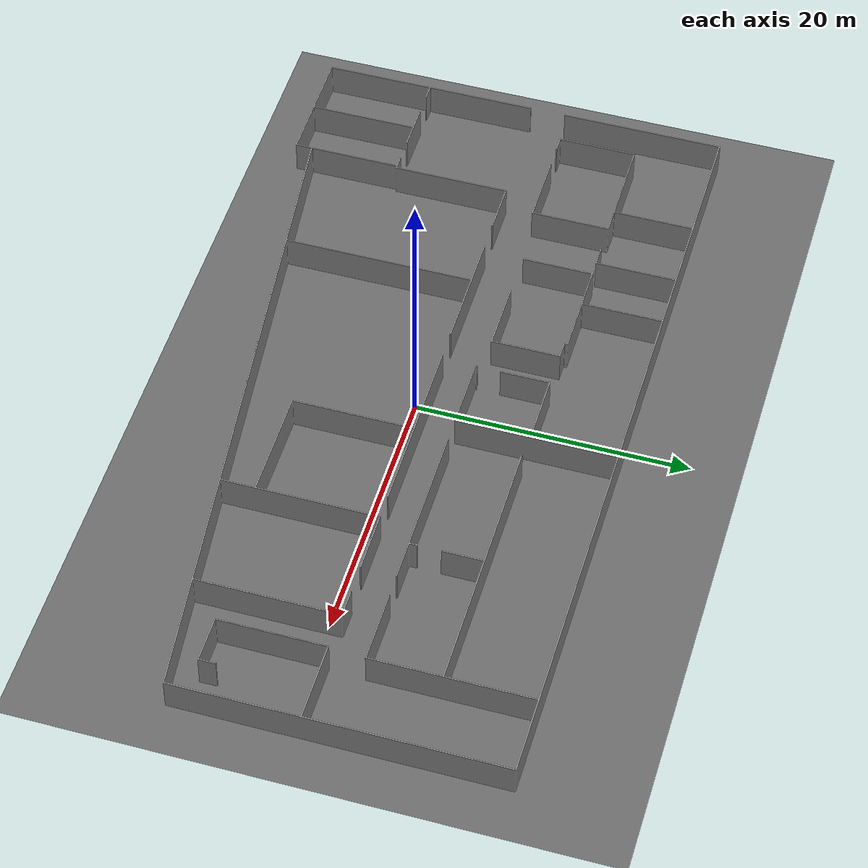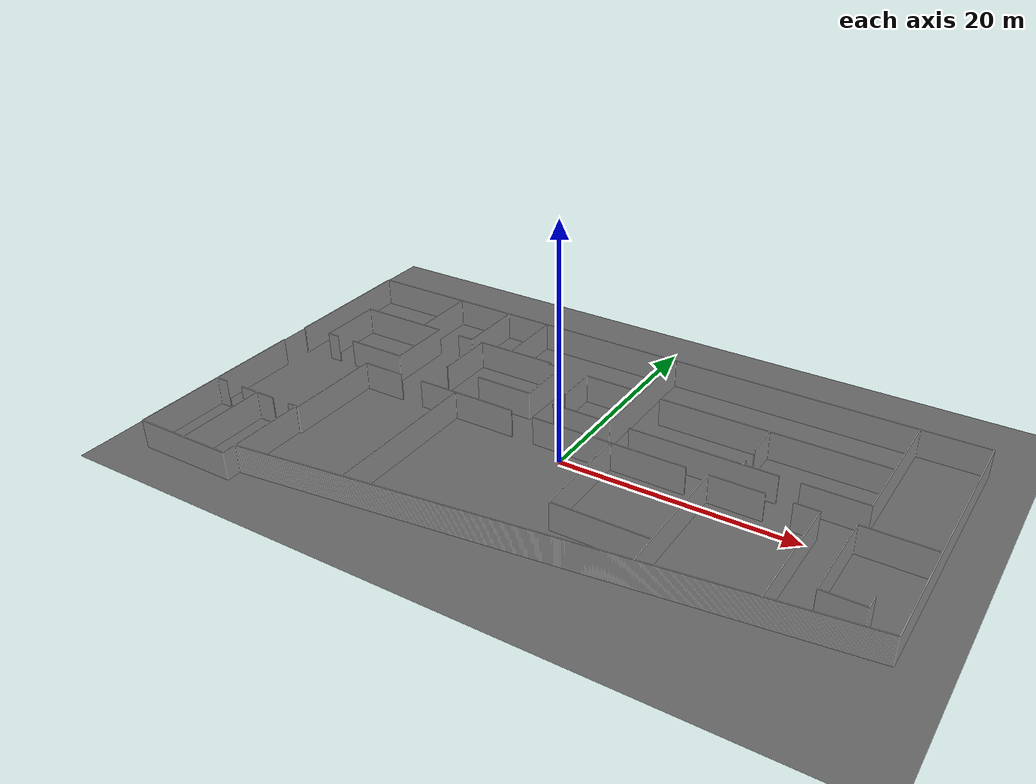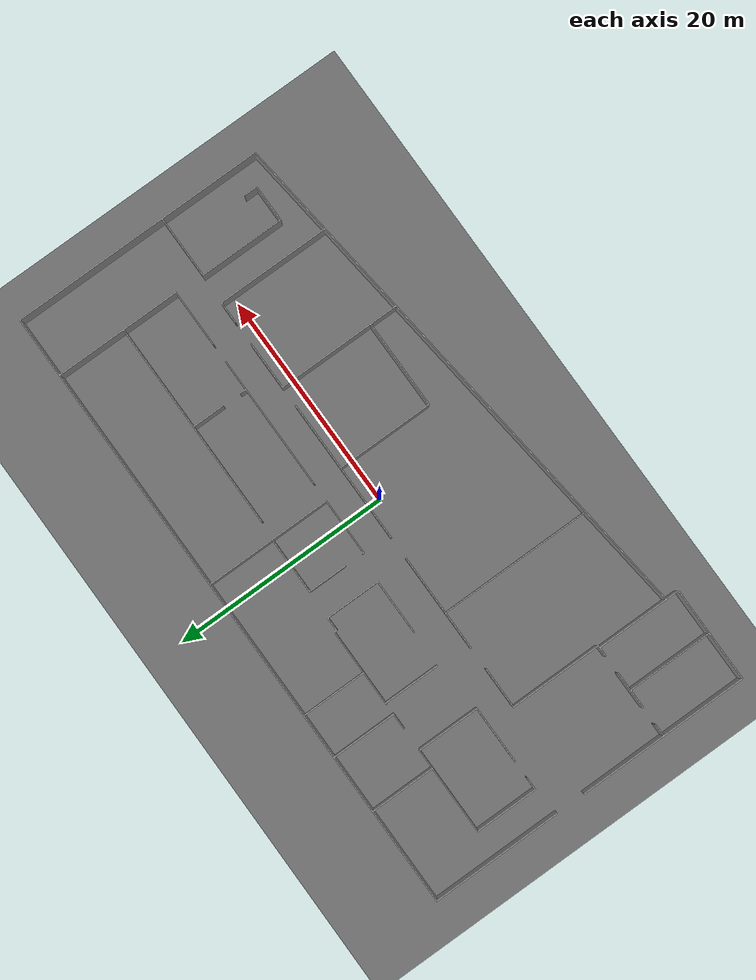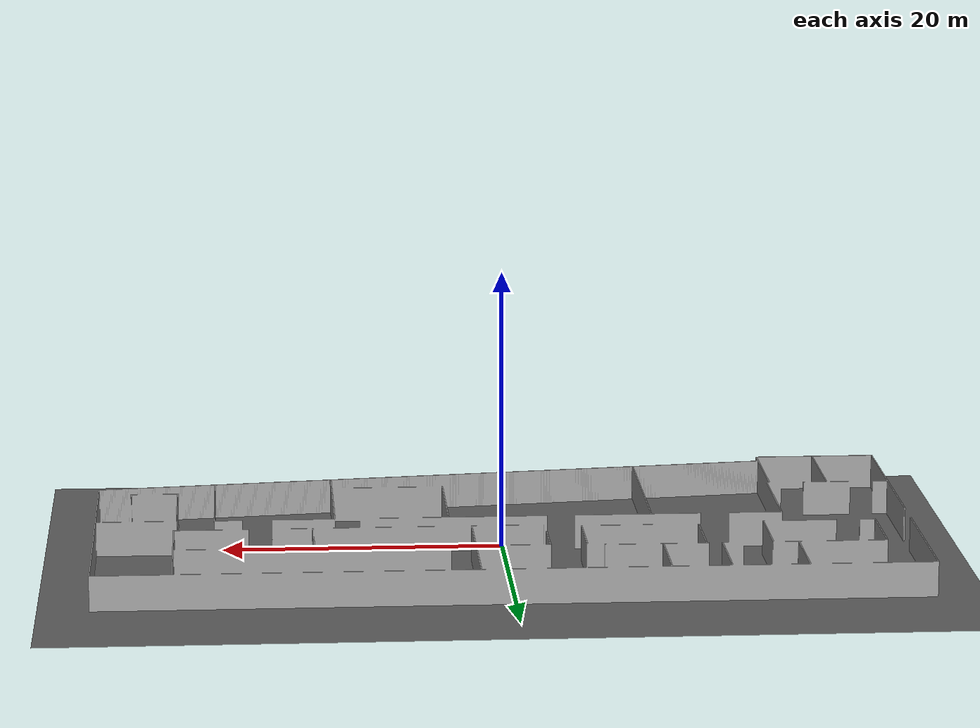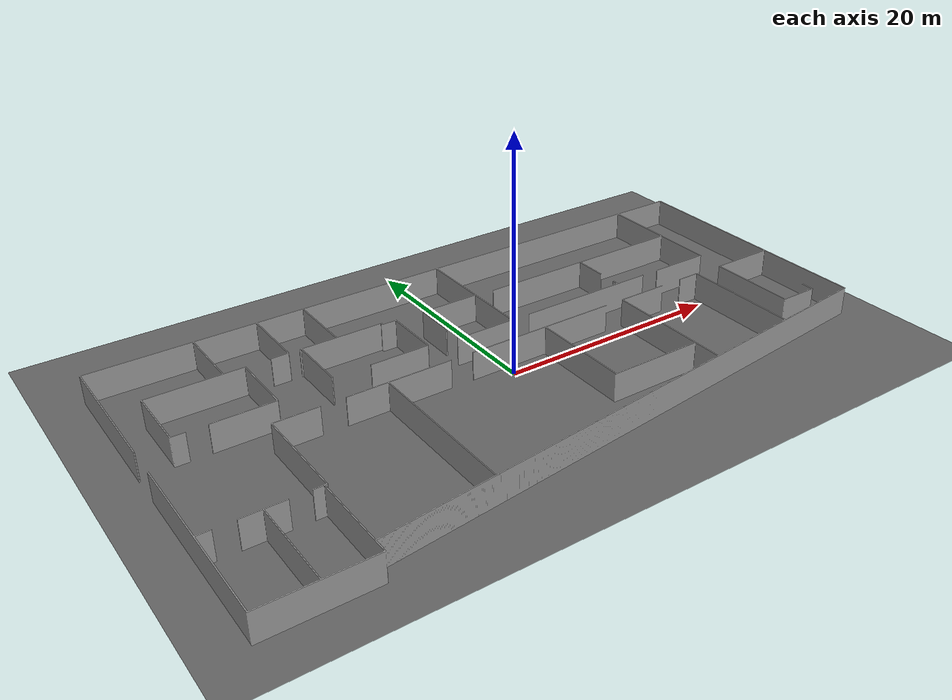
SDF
<?xml version="1.0"?>
<sdf version="1.7">
  <world name="office_environment_1">
    <atmosphere type="adiabatic" />
    <gravity>0 0 -9.8</gravity>
    <magnetic_field>6e-06 2.3e-05 -4.2e-05</magnetic_field>

    <scene>
      <ambient>0.4 0.4 0.4 1</ambient>
      <background>0.7 0.7 0.7 1</background>
      <shadows>false</shadows>
      <grid>true</grid>
      <origin_visual>true</origin_visual>
    </scene>

    <physics name="default_physics" default="true" type="dart">
      <max_step_size>0.01</max_step_size>
      <real_time_update_rate>100</real_time_update_rate>
      <real_time_factor>1</real_time_factor>
      <max_contacts>10</max_contacts>
    </physics>

    <plugin name="gz::sim::systems::Physics" filename="gz-sim-physics-system">
      <engine>
        <filename>gz-physics-dartsim-plugin</filename>
      </engine>
    </plugin>
    <plugin filename="gz-sim-contact-system" name="gz::sim::systems::Contact" />
    <plugin filename="gz-sim-imu-system" name="gz::sim::systems::Imu" />
    <plugin filename="gz-sim-scene-broadcaster-system" name="gz::sim::systems::SceneBroadcaster" />
    <plugin filename="gz-sim-user-commands-system" name="gz::sim::systems::UserCommands" />
    <plugin filename="gz-sim-sensors-system" name="gz::sim::systems::Sensors">
      <render_engine>ogre2</render_engine>
    </plugin>

    <light name="sun" type="directional">
      <cast_shadows>1</cast_shadows>
      <pose>0 0 10 0 -0.5 0</pose>
      <diffuse>0.8 0.8 0.8 1</diffuse>
      <specular>0.2 0.2 0.2 1</specular>
      <attenuation>
        <range>1000</range>
        <constant>0.9</constant>
        <linear>0.01</linear>
        <quadratic>0.001</quadratic>
      </attenuation>
      <direction>-0.5 0.1 -0.9</direction>
    </light>

    <model name="ground_plane">
      <static>true</static>
      <link name="link">
        <visual name="visual">
          <geometry>
            <plane>
              <normal>0 0 1</normal>
              <size>100 100</size>
            </plane>
          </geometry>
          <pose>0 0 0 0 0 0</pose>
          <material>
            <ambient>0.4 0.4 0.4 1</ambient>
            <diffuse>0.4 0.4 0.4 1</diffuse>
            <specular>0.05 0.05 0.05 1</specular>
          </material>
          <cast_shadows>0</cast_shadows>
        </visual>
        <collision name="collision">
          <geometry>
            <plane>
              <normal>0 0 1</normal>
              <size>100 100</size>
            </plane>
          </geometry>
          <pose>0 0 0 0 0 0</pose>
          <surface>
            <friction>
              <ode />
              <torsional>
                <ode />
              </torsional>
            </friction>
            <bounce />
            <contact />
          </surface>
        </collision>
        <pose>0 0 0 0 0 0</pose>
      </link>
      <pose>0 0 0 0 0 0</pose>
    </model>

    <!--
      The office walls are provided by one STL mesh. The same mesh is used for
      both `visual` and `collision` so Gazebo renders and collides against the
      same geometry.
    -->
    <model name="office_environment_1">
      <static>true</static>
      <link name="link">
        <visual name="visual">
          <geometry>
            <mesh>
              <uri>package://ros_gz_tools/meshes/office_environment_1/office_environment_1.stl</uri>
            </mesh>
          </geometry>
          <material>
            <ambient>0.6 0.6 0.6 1</ambient>
            <diffuse>0.6 0.6 0.6 1</diffuse>
          </material>
        </visual>
        <collision name="collision">
          <geometry>
            <mesh>
              <uri>package://ros_gz_tools/meshes/office_environment_1/office_environment_1.stl</uri>
            </mesh>
          </geometry>
        </collision>
      </link>
      <pose relative_to="ground_plane">0 0 0 0 0 0</pose>
    </model>
  </world>
</sdf>
